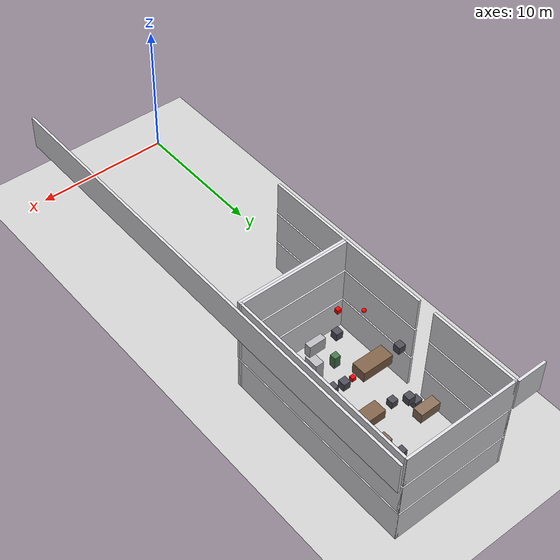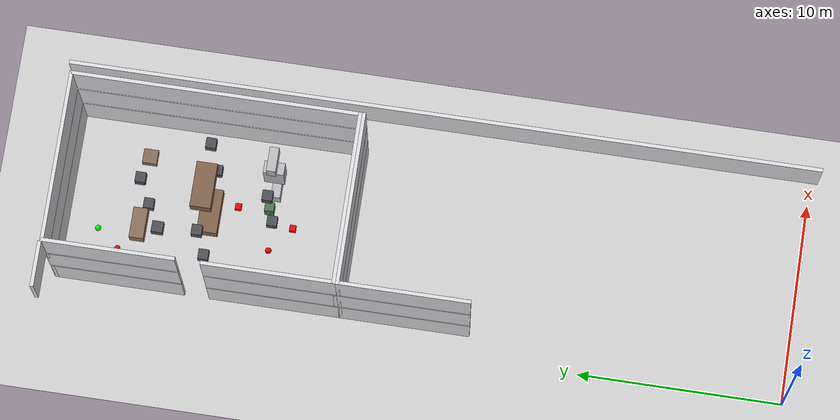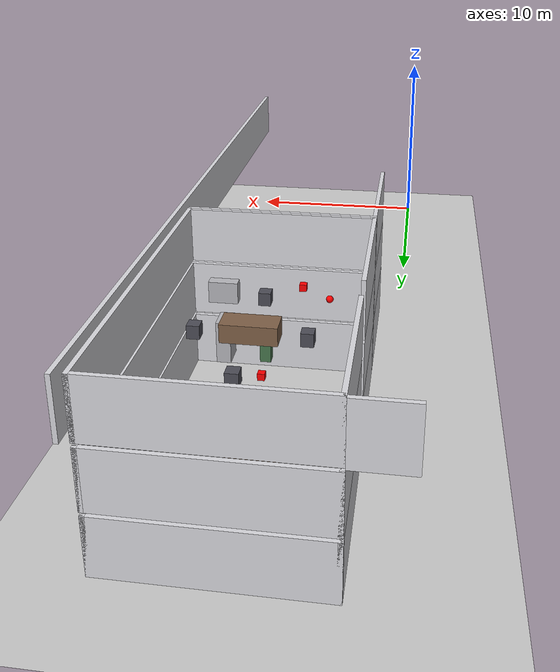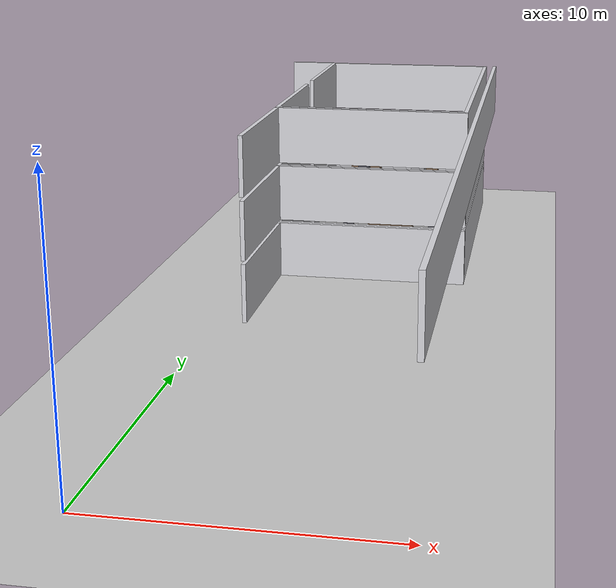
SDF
<sdf version="1.7">
 <world name="generated_world">
  <include><uri>model://sun</uri></include>
  <include><uri>model://ground_plane</uri></include>
  <model name="generated_building">
   <static>true</static>
   <link name="floor_0_room_1_corridor_wall_upper">
    <pose>1.1900 18.6725 1.2250 0.0000 0.0000 0.0000</pose>
    <collision name="floor_0_room_1_corridor_wall_upper_collision">
     <geometry><box><size>0.1800 6.4150 2.4500</size></box></geometry>
    </collision>
    <visual name="floor_0_room_1_corridor_wall_upper_visual">
     <geometry><box><size>0.1800 6.4150 2.4500</size></box></geometry>
     <material><ambient>0.86 0.86 0.88 1</ambient><diffuse>0.86 0.86 0.88 1</diffuse></material>
    </visual>
    <gravity>false</gravity>
   </link>
   <link name="floor_0_room_1_north_wall">
    <pose>5.3000 21.7900 1.2250 0.0000 0.0000 0.0000</pose>
    <collision name="floor_0_room_1_north_wall_collision">
     <geometry><box><size>8.4000 0.1800 2.4500</size></box></geometry>
    </collision>
    <visual name="floor_0_room_1_north_wall_visual">
     <geometry><box><size>8.4000 0.1800 2.4500</size></box></geometry>
     <material><ambient>0.86 0.86 0.88 1</ambient><diffuse>0.86 0.86 0.88 1</diffuse></material>
    </visual>
    <gravity>false</gravity>
   </link>
   <link name="floor_0_room_3_corridor_wall_lower">
    <pose>1.1900 25.0875 1.2250 0.0000 0.0000 0.0000</pose>
    <collision name="floor_0_room_3_corridor_wall_lower_collision">
     <geometry><box><size>0.1800 6.4150 2.4500</size></box></geometry>
    </collision>
    <visual name="floor_0_room_3_corridor_wall_lower_visual">
     <geometry><box><size>0.1800 6.4150 2.4500</size></box></geometry>
     <material><ambient>0.86 0.86 0.88 1</ambient><diffuse>0.86 0.86 0.88 1</diffuse></material>
    </visual>
    <gravity>false</gravity>
   </link>
   <link name="floor_0_room_3_corridor_wall_upper">
    <pose>1.1900 32.7025 1.2250 0.0000 0.0000 0.0000</pose>
    <collision name="floor_0_room_3_corridor_wall_upper_collision">
     <geometry><box><size>0.1800 6.4150 2.4500</size></box></geometry>
    </collision>
    <visual name="floor_0_room_3_corridor_wall_upper_visual">
     <geometry><box><size>0.1800 6.4150 2.4500</size></box></geometry>
     <material><ambient>0.86 0.86 0.88 1</ambient><diffuse>0.86 0.86 0.88 1</diffuse></material>
    </visual>
    <gravity>false</gravity>
   </link>
   <link name="floor_0_room_3_east_wall">
    <pose>9.4100 28.8950 1.2250 0.0000 0.0000 0.0000</pose>
    <collision name="floor_0_room_3_east_wall_collision">
     <geometry><box><size>0.1800 14.0300 2.4500</size></box></geometry>
    </collision>
    <visual name="floor_0_room_3_east_wall_visual">
     <geometry><box><size>0.1800 14.0300 2.4500</size></box></geometry>
     <material><ambient>0.86 0.86 0.88 1</ambient><diffuse>0.86 0.86 0.88 1</diffuse></material>
    </visual>
    <gravity>false</gravity>
   </link>
   <link name="floor_0_room_3_south_wall">
    <pose>5.3000 21.9700 1.2250 0.0000 0.0000 0.0000</pose>
    <collision name="floor_0_room_3_south_wall_collision">
     <geometry><box><size>8.4000 0.1800 2.4500</size></box></geometry>
    </collision>
    <visual name="floor_0_room_3_south_wall_visual">
     <geometry><box><size>8.4000 0.1800 2.4500</size></box></geometry>
     <material><ambient>0.86 0.86 0.88 1</ambient><diffuse>0.86 0.86 0.88 1</diffuse></material>
    </visual>
    <gravity>false</gravity>
   </link>
   <link name="floor_0_room_3_north_wall">
    <pose>5.3000 35.8200 1.2250 0.0000 0.0000 0.0000</pose>
    <collision name="floor_0_room_3_north_wall_collision">
     <geometry><box><size>8.4000 0.1800 2.4500</size></box></geometry>
    </collision>
    <visual name="floor_0_room_3_north_wall_visual">
     <geometry><box><size>8.4000 0.1800 2.4500</size></box></geometry>
     <material><ambient>0.86 0.86 0.88 1</ambient><diffuse>0.86 0.86 0.88 1</diffuse></material>
    </visual>
    <gravity>false</gravity>
   </link>
   <link name="floor_0_room_3_table">
    <pose>5.3000 28.8950 0.4500 0.0000 0.0000 0.0000</pose>
    <collision name="floor_0_room_3_table_collision">
     <geometry><box><size>2.2000 1.0000 0.7500</size></box></geometry>
    </collision>
    <visual name="floor_0_room_3_table_visual">
     <geometry><box><size>2.2000 1.0000 0.7500</size></box></geometry>
     <material><ambient>0.50 0.38 0.28 1</ambient><diffuse>0.50 0.38 0.28 1</diffuse></material>
    </visual>
    <gravity>false</gravity>
   </link>
   <link name="floor_0_room_3_chair_north">
    <pose>5.3000 31.9525 0.2800 0.0000 0.0000 0.0000</pose>
    <collision name="floor_0_room_3_chair_north_collision">
     <geometry><box><size>0.5000 0.5000 0.5500</size></box></geometry>
    </collision>
    <visual name="floor_0_room_3_chair_north_visual">
     <geometry><box><size>0.5000 0.5000 0.5500</size></box></geometry>
     <material><ambient>0.30 0.30 0.34 1</ambient><diffuse>0.30 0.30 0.34 1</diffuse></material>
    </visual>
    <gravity>false</gravity>
   </link>
   <link name="floor_0_room_3_chair_south">
    <pose>5.3000 25.8375 0.2800 0.0000 0.0000 0.0000</pose>
    <collision name="floor_0_room_3_chair_south_collision">
     <geometry><box><size>0.5000 0.5000 0.5500</size></box></geometry>
    </collision>
    <visual name="floor_0_room_3_chair_south_visual">
     <geometry><box><size>0.5000 0.5000 0.5500</size></box></geometry>
     <material><ambient>0.30 0.30 0.34 1</ambient><diffuse>0.30 0.30 0.34 1</diffuse></material>
    </visual>
    <gravity>false</gravity>
   </link>
   <link name="floor_0_room_3_chair_west">
    <pose>3.1500 28.8950 0.2800 0.0000 0.0000 1.5700</pose>
    <collision name="floor_0_room_3_chair_west_collision">
     <geometry><box><size>0.5000 0.5000 0.5500</size></box></geometry>
    </collision>
    <visual name="floor_0_room_3_chair_west_visual">
     <geometry><box><size>0.5000 0.5000 0.5500</size></box></geometry>
     <material><ambient>0.30 0.30 0.34 1</ambient><diffuse>0.30 0.30 0.34 1</diffuse></material>
    </visual>
    <gravity>false</gravity>
   </link>
   <link name="floor_0_room_3_chair_east">
    <pose>7.4500 28.8950 0.2800 0.0000 0.0000 1.5700</pose>
    <collision name="floor_0_room_3_chair_east_collision">
     <geometry><box><size>0.5000 0.5000 0.5500</size></box></geometry>
    </collision>
    <visual name="floor_0_room_3_chair_east_visual">
     <geometry><box><size>0.5000 0.5000 0.5500</size></box></geometry>
     <material><ambient>0.30 0.30 0.34 1</ambient><diffuse>0.30 0.30 0.34 1</diffuse></material>
    </visual>
    <gravity>false</gravity>
   </link>
   <link name="floor_0_room_3_credenza">
    <pose>7.0000 25.8375 0.4500 0.0000 0.0000 0.0000</pose>
    <collision name="floor_0_room_3_credenza_collision">
     <geometry><box><size>1.2000 0.4500 0.9000</size></box></geometry>
    </collision>
    <visual name="floor_0_room_3_credenza_visual">
     <geometry><box><size>1.2000 0.4500 0.9000</size></box></geometry>
     <material><ambient>0.72 0.72 0.74 1</ambient><diffuse>0.72 0.72 0.74 1</diffuse></material>
    </visual>
    <gravity>false</gravity>
   </link>
   <link name="floor_1_room_1_corridor_wall_upper">
    <pose>1.1900 18.6725 3.8250 0.0000 0.0000 0.0000</pose>
    <collision name="floor_1_room_1_corridor_wall_upper_collision">
     <geometry><box><size>0.1800 6.4150 2.4500</size></box></geometry>
    </collision>
    <visual name="floor_1_room_1_corridor_wall_upper_visual">
     <geometry><box><size>0.1800 6.4150 2.4500</size></box></geometry>
     <material><ambient>0.86 0.86 0.88 1</ambient><diffuse>0.86 0.86 0.88 1</diffuse></material>
    </visual>
    <gravity>false</gravity>
   </link>
   <link name="floor_1_room_1_north_wall">
    <pose>5.3000 21.7900 3.8250 0.0000 0.0000 0.0000</pose>
    <collision name="floor_1_room_1_north_wall_collision">
     <geometry><box><size>8.4000 0.1800 2.4500</size></box></geometry>
    </collision>
    <visual name="floor_1_room_1_north_wall_visual">
     <geometry><box><size>8.4000 0.1800 2.4500</size></box></geometry>
     <material><ambient>0.86 0.86 0.88 1</ambient><diffuse>0.86 0.86 0.88 1</diffuse></material>
    </visual>
    <gravity>false</gravity>
   </link>
   <link name="floor_1_room_3_corridor_wall_lower">
    <pose>1.1900 25.0875 3.8250 0.0000 0.0000 0.0000</pose>
    <collision name="floor_1_room_3_corridor_wall_lower_collision">
     <geometry><box><size>0.1800 6.4150 2.4500</size></box></geometry>
    </collision>
    <visual name="floor_1_room_3_corridor_wall_lower_visual">
     <geometry><box><size>0.1800 6.4150 2.4500</size></box></geometry>
     <material><ambient>0.86 0.86 0.88 1</ambient><diffuse>0.86 0.86 0.88 1</diffuse></material>
    </visual>
    <gravity>false</gravity>
   </link>
   <link name="floor_1_room_3_corridor_wall_upper">
    <pose>1.1900 32.7025 3.8250 0.0000 0.0000 0.0000</pose>
    <collision name="floor_1_room_3_corridor_wall_upper_collision">
     <geometry><box><size>0.1800 6.4150 2.4500</size></box></geometry>
    </collision>
    <visual name="floor_1_room_3_corridor_wall_upper_visual">
     <geometry><box><size>0.1800 6.4150 2.4500</size></box></geometry>
     <material><ambient>0.86 0.86 0.88 1</ambient><diffuse>0.86 0.86 0.88 1</diffuse></material>
    </visual>
    <gravity>false</gravity>
   </link>
   <link name="floor_1_room_3_east_wall">
    <pose>9.4100 28.8950 3.8250 0.0000 0.0000 0.0000</pose>
    <collision name="floor_1_room_3_east_wall_collision">
     <geometry><box><size>0.1800 14.0300 2.4500</size></box></geometry>
    </collision>
    <visual name="floor_1_room_3_east_wall_visual">
     <geometry><box><size>0.1800 14.0300 2.4500</size></box></geometry>
     <material><ambient>0.86 0.86 0.88 1</ambient><diffuse>0.86 0.86 0.88 1</diffuse></material>
    </visual>
    <gravity>false</gravity>
   </link>
   <link name="floor_1_room_3_south_wall">
    <pose>5.3000 21.9700 3.8250 0.0000 0.0000 0.0000</pose>
    <collision name="floor_1_room_3_south_wall_collision">
     <geometry><box><size>8.4000 0.1800 2.4500</size></box></geometry>
    </collision>
    <visual name="floor_1_room_3_south_wall_visual">
     <geometry><box><size>8.4000 0.1800 2.4500</size></box></geometry>
     <material><ambient>0.86 0.86 0.88 1</ambient><diffuse>0.86 0.86 0.88 1</diffuse></material>
    </visual>
    <gravity>false</gravity>
   </link>
   <link name="floor_1_room_3_north_wall">
    <pose>5.3000 35.8200 3.8250 0.0000 0.0000 0.0000</pose>
    <collision name="floor_1_room_3_north_wall_collision">
     <geometry><box><size>8.4000 0.1800 2.4500</size></box></geometry>
    </collision>
    <visual name="floor_1_room_3_north_wall_visual">
     <geometry><box><size>8.4000 0.1800 2.4500</size></box></geometry>
     <material><ambient>0.86 0.86 0.88 1</ambient><diffuse>0.86 0.86 0.88 1</diffuse></material>
    </visual>
    <gravity>false</gravity>
   </link>
   <link name="floor_1_room_3_desk">
    <pose>3.6000 31.9525 3.0500 0.0000 0.0000 0.0000</pose>
    <collision name="floor_1_room_3_desk_collision">
     <geometry><box><size>1.5000 0.7000 0.7500</size></box></geometry>
    </collision>
    <visual name="floor_1_room_3_desk_visual">
     <geometry><box><size>1.5000 0.7000 0.7500</size></box></geometry>
     <material><ambient>0.54 0.43 0.34 1</ambient><diffuse>0.54 0.43 0.34 1</diffuse></material>
    </visual>
    <gravity>false</gravity>
   </link>
   <link name="floor_1_room_3_chair">
    <pose>3.6000 31.0525 2.8800 0.0000 0.0000 0.0000</pose>
    <collision name="floor_1_room_3_chair_collision">
     <geometry><box><size>0.5500 0.5500 0.5500</size></box></geometry>
    </collision>
    <visual name="floor_1_room_3_chair_visual">
     <geometry><box><size>0.5500 0.5500 0.5500</size></box></geometry>
     <material><ambient>0.30 0.30 0.34 1</ambient><diffuse>0.30 0.30 0.34 1</diffuse></material>
    </visual>
    <gravity>false</gravity>
   </link>
   <link name="floor_1_room_3_cabinet">
    <pose>7.0000 25.8375 3.5000 0.0000 0.0000 0.0000</pose>
    <collision name="floor_1_room_3_cabinet_collision">
     <geometry><box><size>0.6000 1.0000 1.8000</size></box></geometry>
    </collision>
    <visual name="floor_1_room_3_cabinet_visual">
     <geometry><box><size>0.6000 1.0000 1.8000</size></box></geometry>
     <material><ambient>0.72 0.72 0.74 1</ambient><diffuse>0.72 0.72 0.74 1</diffuse></material>
    </visual>
    <gravity>false</gravity>
   </link>
   <link name="floor_1_room_3_side_table">
    <pose>7.0000 31.9525 2.9200 0.0000 0.0000 0.0000</pose>
    <collision name="floor_1_room_3_side_table_collision">
     <geometry><box><size>0.7000 0.7000 0.4500</size></box></geometry>
    </collision>
    <visual name="floor_1_room_3_side_table_visual">
     <geometry><box><size>0.7000 0.7000 0.4500</size></box></geometry>
     <material><ambient>0.52 0.42 0.33 1</ambient><diffuse>0.52 0.42 0.33 1</diffuse></material>
    </visual>
    <gravity>false</gravity>
   </link>
   <link name="floor_1_room_3_planter">
    <pose>5.3000 25.8375 3.0500 0.0000 0.0000 0.0000</pose>
    <collision name="floor_1_room_3_planter_collision">
     <geometry><box><size>0.4500 0.4500 0.9000</size></box></geometry>
    </collision>
    <visual name="floor_1_room_3_planter_visual">
     <geometry><box><size>0.4500 0.4500 0.9000</size></box></geometry>
     <material><ambient>0.28 0.46 0.30 1</ambient><diffuse>0.28 0.46 0.30 1</diffuse></material>
    </visual>
    <gravity>false</gravity>
   </link>
   <link name="exterior_east_floor_2">
    <pose>9.9100 18.0000 6.4250 0.0000 0.0000 0.0000</pose>
    <collision name="exterior_east_floor_2_collision">
     <geometry><box><size>0.1800 36.0000 2.4500</size></box></geometry>
    </collision>
    <visual name="exterior_east_floor_2_visual">
     <geometry><box><size>0.1800 36.0000 2.4500</size></box></geometry>
     <material><ambient>0.86 0.86 0.88 1</ambient><diffuse>0.86 0.86 0.88 1</diffuse></material>
    </visual>
    <gravity>false</gravity>
   </link>
   <link name="north_end_wall_floor_2">
    <pose>0.0000 35.9100 6.4250 0.0000 0.0000 0.0000</pose>
    <collision name="north_end_wall_floor_2_collision">
     <geometry><box><size>2.2000 0.1800 2.4500</size></box></geometry>
    </collision>
    <visual name="north_end_wall_floor_2_visual">
     <geometry><box><size>2.2000 0.1800 2.4500</size></box></geometry>
     <material><ambient>0.86 0.86 0.88 1</ambient><diffuse>0.86 0.86 0.88 1</diffuse></material>
    </visual>
    <gravity>false</gravity>
   </link>
   <link name="floor_2_room_1_corridor_wall_upper">
    <pose>1.1900 18.6725 6.4250 0.0000 0.0000 0.0000</pose>
    <collision name="floor_2_room_1_corridor_wall_upper_collision">
     <geometry><box><size>0.1800 6.4150 2.4500</size></box></geometry>
    </collision>
    <visual name="floor_2_room_1_corridor_wall_upper_visual">
     <geometry><box><size>0.1800 6.4150 2.4500</size></box></geometry>
     <material><ambient>0.86 0.86 0.88 1</ambient><diffuse>0.86 0.86 0.88 1</diffuse></material>
    </visual>
    <gravity>false</gravity>
   </link>
   <link name="floor_2_room_1_north_wall">
    <pose>5.3000 21.7900 6.4250 0.0000 0.0000 0.0000</pose>
    <collision name="floor_2_room_1_north_wall_collision">
     <geometry><box><size>8.4000 0.1800 2.4500</size></box></geometry>
    </collision>
    <visual name="floor_2_room_1_north_wall_visual">
     <geometry><box><size>8.4000 0.1800 2.4500</size></box></geometry>
     <material><ambient>0.86 0.86 0.88 1</ambient><diffuse>0.86 0.86 0.88 1</diffuse></material>
    </visual>
    <gravity>false</gravity>
   </link>
   <link name="floor_2_room_3_corridor_wall_lower">
    <pose>1.1900 25.0875 6.4250 0.0000 0.0000 0.0000</pose>
    <collision name="floor_2_room_3_corridor_wall_lower_collision">
     <geometry><box><size>0.1800 6.4150 2.4500</size></box></geometry>
    </collision>
    <visual name="floor_2_room_3_corridor_wall_lower_visual">
     <geometry><box><size>0.1800 6.4150 2.4500</size></box></geometry>
     <material><ambient>0.86 0.86 0.88 1</ambient><diffuse>0.86 0.86 0.88 1</diffuse></material>
    </visual>
    <gravity>false</gravity>
   </link>
   <link name="floor_2_room_3_corridor_wall_upper">
    <pose>1.1900 32.7025 6.4250 0.0000 0.0000 0.0000</pose>
    <collision name="floor_2_room_3_corridor_wall_upper_collision">
     <geometry><box><size>0.1800 6.4150 2.4500</size></box></geometry>
    </collision>
    <visual name="floor_2_room_3_corridor_wall_upper_visual">
     <geometry><box><size>0.1800 6.4150 2.4500</size></box></geometry>
     <material><ambient>0.86 0.86 0.88 1</ambient><diffuse>0.86 0.86 0.88 1</diffuse></material>
    </visual>
    <gravity>false</gravity>
   </link>
   <link name="floor_2_room_3_east_wall">
    <pose>9.4100 28.8950 6.4250 0.0000 0.0000 0.0000</pose>
    <collision name="floor_2_room_3_east_wall_collision">
     <geometry><box><size>0.1800 14.0300 2.4500</size></box></geometry>
    </collision>
    <visual name="floor_2_room_3_east_wall_visual">
     <geometry><box><size>0.1800 14.0300 2.4500</size></box></geometry>
     <material><ambient>0.86 0.86 0.88 1</ambient><diffuse>0.86 0.86 0.88 1</diffuse></material>
    </visual>
    <gravity>false</gravity>
   </link>
   <link name="floor_2_room_3_south_wall">
    <pose>5.3000 21.9700 6.4250 0.0000 0.0000 0.0000</pose>
    <collision name="floor_2_room_3_south_wall_collision">
     <geometry><box><size>8.4000 0.1800 2.4500</size></box></geometry>
    </collision>
    <visual name="floor_2_room_3_south_wall_visual">
     <geometry><box><size>8.4000 0.1800 2.4500</size></box></geometry>
     <material><ambient>0.86 0.86 0.88 1</ambient><diffuse>0.86 0.86 0.88 1</diffuse></material>
    </visual>
    <gravity>false</gravity>
   </link>
   <link name="floor_2_room_3_north_wall">
    <pose>5.3000 35.8200 6.4250 0.0000 0.0000 0.0000</pose>
    <collision name="floor_2_room_3_north_wall_collision">
     <geometry><box><size>8.4000 0.1800 2.4500</size></box></geometry>
    </collision>
    <visual name="floor_2_room_3_north_wall_visual">
     <geometry><box><size>8.4000 0.1800 2.4500</size></box></geometry>
     <material><ambient>0.86 0.86 0.88 1</ambient><diffuse>0.86 0.86 0.88 1</diffuse></material>
    </visual>
    <gravity>false</gravity>
   </link>
   <link name="floor_2_room_3_table">
    <pose>5.3000 28.8950 5.6500 0.0000 0.0000 0.0000</pose>
    <collision name="floor_2_room_3_table_collision">
     <geometry><box><size>2.2000 1.0000 0.7500</size></box></geometry>
    </collision>
    <visual name="floor_2_room_3_table_visual">
     <geometry><box><size>2.2000 1.0000 0.7500</size></box></geometry>
     <material><ambient>0.50 0.38 0.28 1</ambient><diffuse>0.50 0.38 0.28 1</diffuse></material>
    </visual>
    <gravity>false</gravity>
   </link>
   <link name="floor_2_room_3_chair_north">
    <pose>5.3000 31.9525 5.4800 0.0000 0.0000 0.0000</pose>
    <collision name="floor_2_room_3_chair_north_collision">
     <geometry><box><size>0.5000 0.5000 0.5500</size></box></geometry>
    </collision>
    <visual name="floor_2_room_3_chair_north_visual">
     <geometry><box><size>0.5000 0.5000 0.5500</size></box></geometry>
     <material><ambient>0.30 0.30 0.34 1</ambient><diffuse>0.30 0.30 0.34 1</diffuse></material>
    </visual>
    <gravity>false</gravity>
   </link>
   <link name="floor_2_room_3_chair_south">
    <pose>5.3000 25.8375 5.4800 0.0000 0.0000 0.0000</pose>
    <collision name="floor_2_room_3_chair_south_collision">
     <geometry><box><size>0.5000 0.5000 0.5500</size></box></geometry>
    </collision>
    <visual name="floor_2_room_3_chair_south_visual">
     <geometry><box><size>0.5000 0.5000 0.5500</size></box></geometry>
     <material><ambient>0.30 0.30 0.34 1</ambient><diffuse>0.30 0.30 0.34 1</diffuse></material>
    </visual>
    <gravity>false</gravity>
   </link>
   <link name="floor_2_room_3_chair_west">
    <pose>3.1500 28.8950 5.4800 0.0000 0.0000 1.5700</pose>
    <collision name="floor_2_room_3_chair_west_collision">
     <geometry><box><size>0.5000 0.5000 0.5500</size></box></geometry>
    </collision>
    <visual name="floor_2_room_3_chair_west_visual">
     <geometry><box><size>0.5000 0.5000 0.5500</size></box></geometry>
     <material><ambient>0.30 0.30 0.34 1</ambient><diffuse>0.30 0.30 0.34 1</diffuse></material>
    </visual>
    <gravity>false</gravity>
   </link>
   <link name="floor_2_room_3_chair_east">
    <pose>7.4500 28.8950 5.4800 0.0000 0.0000 1.5700</pose>
    <collision name="floor_2_room_3_chair_east_collision">
     <geometry><box><size>0.5000 0.5000 0.5500</size></box></geometry>
    </collision>
    <visual name="floor_2_room_3_chair_east_visual">
     <geometry><box><size>0.5000 0.5000 0.5500</size></box></geometry>
     <material><ambient>0.30 0.30 0.34 1</ambient><diffuse>0.30 0.30 0.34 1</diffuse></material>
    </visual>
    <gravity>false</gravity>
   </link>
   <link name="floor_2_room_3_credenza">
    <pose>7.0000 25.8375 5.6500 0.0000 0.0000 0.0000</pose>
    <collision name="floor_2_room_3_credenza_collision">
     <geometry><box><size>1.2000 0.4500 0.9000</size></box></geometry>
    </collision>
    <visual name="floor_2_room_3_credenza_visual">
     <geometry><box><size>1.2000 0.4500 0.9000</size></box></geometry>
     <material><ambient>0.72 0.72 0.74 1</ambient><diffuse>0.72 0.72 0.74 1</diffuse></material>
    </visual>
    <gravity>false</gravity>
   </link>
  </model>
  <model name="danger_red_sphere_01">
   <static>true</static>
   <pose>2.728178 25.399173 5.350000 0.000000 0.000000 0.000000</pose>
   <link name="link">
    <collision name="collision"><geometry><sphere><radius>0.150</radius></sphere></geometry></collision>
    <visual name="visual">
     <geometry><sphere><radius>0.150</radius></sphere></geometry>
     <material><ambient>1.0 0.0 0.0 1.0</ambient><diffuse>1.0 0.0 0.0 1.0</diffuse></material>
    </visual>
   </link>
  </model>
  <model name="distractor_red_box_01">
   <static>true</static>
   <pose>5.223111 27.369581 2.750000 0.000000 0.000000 0.000000</pose>
   <link name="link">
    <collision name="collision">
     <geometry><box><size>0.300000 0.300000 0.300000</size></box></geometry>
    </collision>
    <visual name="visual">
     <geometry><box><size>0.300000 0.300000 0.300000</size></box></geometry>
     <material><ambient>1.0 0.0 0.0 1.0</ambient><diffuse>1.0 0.0 0.0 1.0</diffuse></material>
    </visual>
   </link>
  </model>
  <model name="distractor_green_sphere_03">
   <static>true</static>
   <pose>3.776400 34.235699 0.150000 0.000000 0.000000 0.000000</pose>
   <link name="link">
    <collision name="collision"><geometry><sphere><radius>0.150</radius></sphere></geometry></collision>
    <visual name="visual">
     <geometry><sphere><radius>0.150</radius></sphere></geometry>
     <material><ambient>0.0 1.0 0.0 1.0</ambient><diffuse>0.0 1.0 0.0 1.0</diffuse></material>
    </visual>
   </link>
  </model>
  <model name="distractor_red_box_06">
   <static>true</static>
   <pose>3.949320 24.413216 5.350000 0.000000 0.000000 0.000000</pose>
   <link name="link">
    <collision name="collision">
     <geometry><box><size>0.300000 0.300000 0.300000</size></box></geometry>
    </collision>
    <visual name="visual">
     <geometry><box><size>0.300000 0.300000 0.300000</size></box></geometry>
     <material><ambient>1.0 0.0 0.0 1.0</ambient><diffuse>1.0 0.0 0.0 1.0</diffuse></material>
    </visual>
   </link>
  </model>
  <model name="danger_red_sphere_04">
   <static>true</static>
   <pose>2.904139 33.136182 0.150000 0.000000 0.000000 0.000000</pose>
   <link name="link">
    <collision name="collision"><geometry><sphere><radius>0.150</radius></sphere></geometry></collision>
    <visual name="visual">
     <geometry><sphere><radius>0.150</radius></sphere></geometry>
     <material><ambient>1.0 0.0 0.0 1.0</ambient><diffuse>1.0 0.0 0.0 1.0</diffuse></material>
    </visual>
   </link>
  </model>
 </world>
</sdf>
